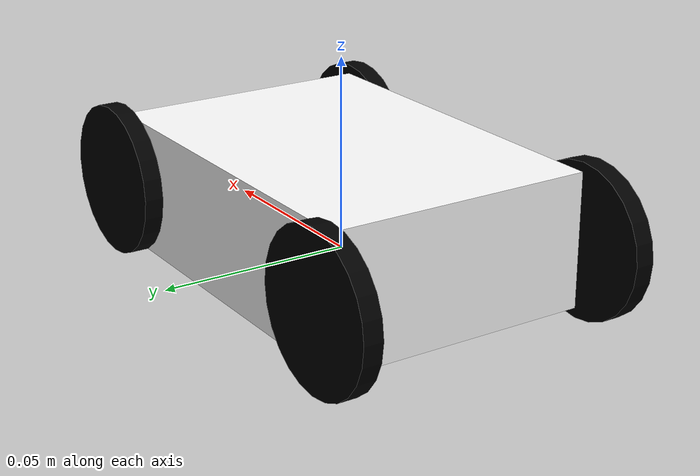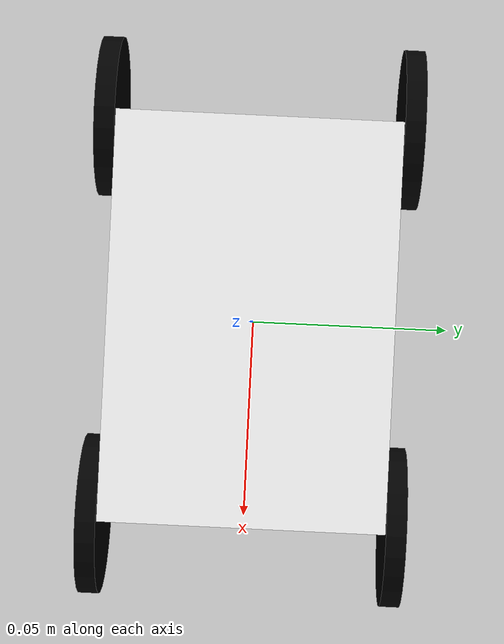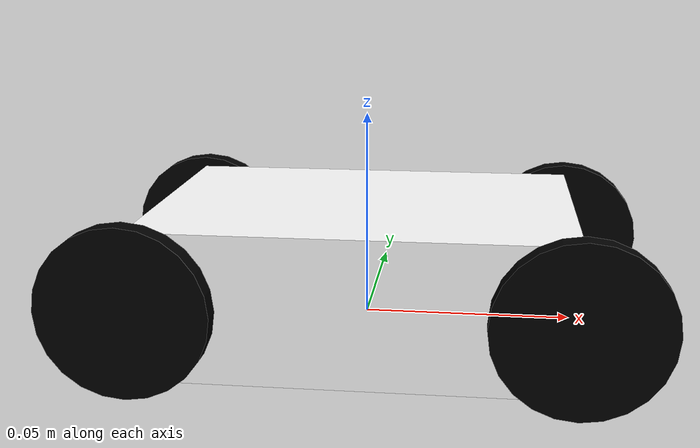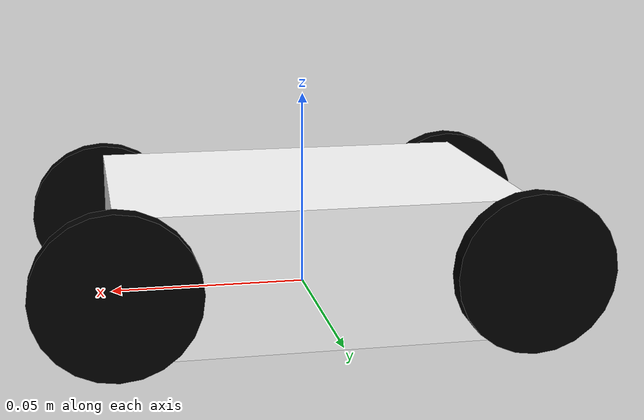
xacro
<?xml version="1.0"?>
<robot xmlns:xacro="http://www.ros.org/wiki/xacro" name="adabot">

    <!--
         Properties for the geometries
    -->
    <xacro:property name="wh_radius" value="0.02" />
    <xacro:property name="wh_length" value="0.005" />
    <xacro:property name="wh_mass" value="${500*3.145927*(wh_radius**2)*wh_length}" />

    <xacro:property name="ax_axis" value="0 1 0" />

    <xacro:property name="ch_length" value="0.1" />
    <xacro:property name="ch_width" value="0.07" />
    <xacro:property name="ch_height" value="0.035" />
    <xacro:property name="ch_mass" value="${500*ch_length*ch_width*ch_height}" />

    <xacro:property name="zoffset" value="${wh_radius*1.1/2}" />

    <!--
         Properties for names and colors
    -->
    <xacro:property name="chassisname" value="base_link" />

    <material name="black">
        <color rgba="0 0 0 1" />
    </material>

    <material name="white">
        <color rgba="1 1 1 1" />
    </material>

    <!--
         Macro for creating wheel geoms
    -->
    <xacro:property name="wh_orig_geom">
        <origin rpy="1.57075 0 0" xyz="0 0 0" />
        <geometry>
            <cylinder radius="${wh_radius}" length="${wh_length}" />
        </geometry>
    </xacro:property>

    <!--
         Macro for creating wheels
    -->
    <xacro:macro name="wheel" params="reflect_lr reflect_fb suffix parent">

        <link name="wh-${suffix}">
            <visual>
                <xacro:insert_block name="wh_orig_geom" />
                <material name="black" />
            </visual>
            <collision>
                <xacro:insert_block name="wh_orig_geom" />
            </collision>
            <inertial>
                <mass value="${wh_mass}" />
                <inertia
                    ixx="${(1/12)*wh_mass*(3*wh_radius**2 + wh_length**2)}"
                    ixy="0"
                    ixz="0"
                    iyy="${(1/12)*wh_mass*(3*wh_radius**2 + wh_length**2)}"
                    iyz="0"
                    izz="${(1/2)*wh_mass*wh_radius**2}"
                    />
            </inertial>
        </link>

        <joint name="ax-${suffix}" type="continuous">
            <parent link="${parent}" />
            <child link="wh-${suffix}" />
            <origin rpy="0 0 0 " xyz="${ch_length/2*reflect_fb} ${(wh_length+ch_width)/2*reflect_lr} ${zoffset}" />
            <axis xyz="${ax_axis}" />
        </joint>

    </xacro:macro>

    <!--
         Macro for creating the chassis' geom
    -->
    <xacro:property name="ch_orig_geom">
        <origin rpy="0 0 0" xyz="0 0 ${zoffset}" />
        <geometry>
            <box size="${ch_length} ${ch_width} ${ch_height}" />
        </geometry>
    </xacro:property>
    <!--
         The main chassis/body
    -->
    <link name="${chassisname}">
        <visual>
            <xacro:insert_block name="ch_orig_geom" />
            <material name="white" />
        </visual>
        <collision>
            <xacro:insert_block name="ch_orig_geom" />
        </collision>
        <inertial>
            <mass value="${ch_mass}" />
            <inertia
                ixx="${(1/12)*ch_mass*(ch_width**2 + ch_height**2)}"
                ixy="0"
                ixz="0"
                iyy="${(1/12)*ch_mass*(ch_length**2 + ch_height**2)}"
                iyz="0"
                izz="${(1/12)*ch_mass*(ch_length**2 + ch_width**2)}"
                />
        </inertial>
    </link>

    <!--
         Macro calls for creating wheels
    -->
    <xacro:wheel reflect_lr="-1" reflect_fb="1" suffix="front-left" parent="${chassisname}" />
    <xacro:wheel reflect_lr="1" reflect_fb="1" suffix="front-right" parent="${chassisname}" />
    <xacro:wheel reflect_lr="-1" reflect_fb="-1" suffix="back-left" parent="${chassisname}" />
    <xacro:wheel reflect_lr="1" reflect_fb="-1" suffix="back-right" parent="${chassisname}" />

</robot>
